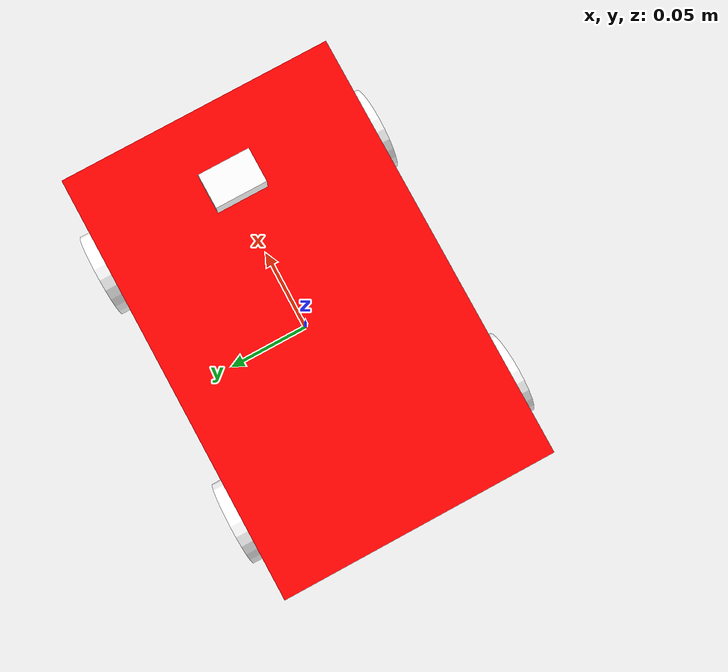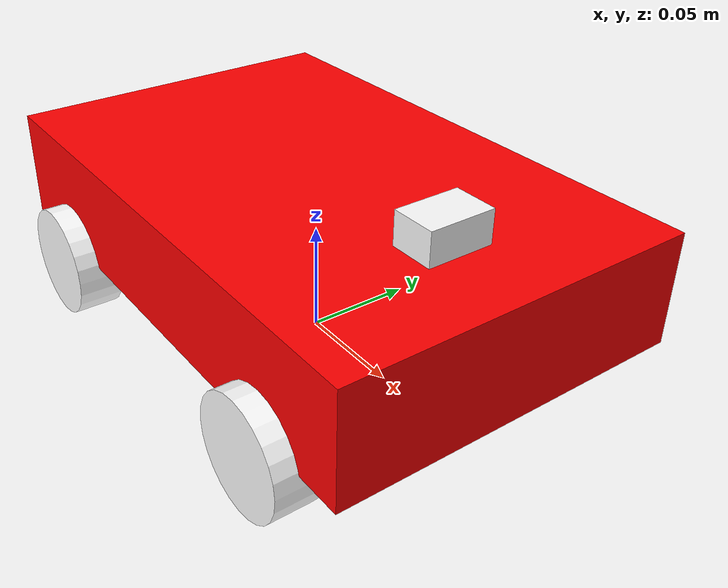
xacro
<?xml version="1.0"?>
<robot name="smartcar"
xmlns:xi="http://www.w3.org/2001/XInclude"
xmlns:gazebo="http://playerstage.sourceforge.net/gazebo/xmlschema/#gz"
xmlns:model="http://playerstage.sourceforge.net/gazebo/xmlschema/#model"
xmlns:sensor="http://playerstage.sourceforge.net/gazebo/xmlschema/#sensor"
xmlns:body="http://playerstage.sourceforge.net/gazebo/xmlschema/#body"
xmlns:geom="http://playerstage.sourceforge.net/gazebo/xmlschema/#geom"
xmlns:joint="http://playerstage.sourceforge.net/gazebo/xmlschema/#joint"
xmlns:controller="http://playerstage.sourceforge.net/gazebo/xmlschema/#controller"
xmlns:interface="http://playerstage.sourceforge.net/gazebo/xmlschema/#interface"
xmlns:rendering="http://playerstage.sourceforge.net/gazebo/xmlschema/#rendering"
xmlns:renderable="http://playerstage.sourceforge.net/gazebo/xmlschema/#renderable"
xmlns:physics="http://playerstage.sourceforge.net/gazebo/xmlschema/#physics"
xmlns:xacro="http://ros.org/wiki/xacro">

<xacro:include filename="$(find myrobot_nav2)/urdf/smartcar_body.urdf.xacro" />

<smartcar_body/>

</robot>

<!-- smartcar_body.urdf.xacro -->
<robot name="smartcar" xmlns:xacro="http://ros.org/wiki/xacro">

  <xacro:macro name="smartcar_body">
    <link name="base_link">
    <inertial>
      <origin xyz="0 0 0.055"/>
      <mass value="1.0" />
      <inertia ixx="1.0" ixy="0.0" ixz="0.0" iyy="1.0" iyz="0.0" izz="1.0"/>
    </inertial>
    <visual>
      <geometry>
        <box size="0.25 .16 .05"/>
      </geometry>
      <origin rpy="0 0 0" xyz="0 0 0.055"/>
      <material name="red">
      <color rgba="1 0 0 1"/>
      </material>
   </visual>
   <collision>
      <origin rpy="0 0 0" xyz="0 0 0.055"/>
      <geometry>
        <box size="0.25 .16 .05" />
      </geometry>
    </collision>
  </link>

 <link name="left_front_wheel">
    <inertial>
      <origin  xyz="0.08 0.08 0.025"/>
      <mass value="0.1" />
       <inertia ixx="1.0" ixy="0.0" ixz="0.0" iyy="1.0" iyz="0.0" izz="1.0"/>
    </inertial>

    <visual>
      <geometry>
        <cylinder length=".02" radius="0.025"/>
      </geometry>
      <material name="white">
        <color rgba="1 1 1 1"/>
      </material>
    </visual>
    <collision>
      <origin rpy="0 1.57075 1.57075" xyz="0.08 0.08 0.025"/>
      <geometry>
         <cylinder length=".02" radius="0.025"/>
      </geometry>
    </collision>
  </link>

  <joint name="left_front_wheel_joint" type="continuous">
    <axis xyz="0 0 1"/>
    <parent link="base_link"/>
    <child link="left_front_wheel"/>
    <origin rpy="0 1.57075 1.57075" xyz="0.08 0.08 0.025"/>
    <limit effort="100" velocity="100"/>
    <joint_properties damping="0.0" friction="0.0"/>
  </joint>

  <link name="right_front_wheel">

    <inertial>

      <origin xyz="0.08 -0.08 0.025"/>

      <mass value="0.1" />

       <inertia ixx="1.0" ixy="0.0" ixz="0.0" iyy="1.0" iyz="0.0" izz="1.0"/>

    </inertial>

    <visual>

      <geometry>

        <cylinder length=".02" radius="0.025"/>

      </geometry>

      <material name="white">

        <color rgba="1 1 1 1"/>

      </material>

    </visual>

    <collision>

      <origin rpy="0 1.57075 1.57075" xyz="0.08 -0.08 0.025"/>

      <geometry>

         <cylinder length=".02" radius="0.025"/>

      </geometry>

    </collision>

  </link>

  <joint name="right_front_wheel_joint" type="continuous">

    <axis xyz="0 0 1"/>

    <parent link="base_link"/>

    <child link="right_front_wheel"/>

    <origin rpy="0 1.57075 1.57075" xyz="0.08 -0.08 0.025"/>

    <limit effort="100" velocity="100"/>

    <joint_properties damping="0.0" friction="0.0"/>

 </joint>

 <link name="left_back_wheel">

    <inertial>

      <origin xyz="-0.08 0.08 0.025"/>

      <mass value="0.1" />

       <inertia ixx="1.0" ixy="0.0" ixz="0.0" iyy="1.0" iyz="0.0" izz="1.0"/>

    </inertial>

    <visual>

      <geometry>

        <cylinder length=".02" radius="0.025"/>

      </geometry>

      <material name="white">

        <color rgba="1 1 1 1"/>

      </material>

   </visual>

   <collision>

       <origin rpy="0 1.57075 1.57075" xyz="-0.08 0.08 0.025"/>

      <geometry>

         <cylinder length=".02" radius="0.025"/>

      </geometry>

    </collision>

  </link>

  <joint name="left_back_wheel_joint" type="continuous">

    <axis xyz="0 0 1"/>

    <parent link="base_link"/>

    <child link="left_back_wheel"/>

    <origin rpy="0 1.57075 1.57075" xyz="-0.08 0.08 0.025"/>

    <limit effort="100" velocity="100"/>

    <joint_properties damping="0.0" friction="0.0"/>

  </joint>

  <link name="right_back_wheel">

    <inertial>

       <origin xyz="-0.08 -0.08 0.025"/>

       <mass value="0.1" />

       <inertia ixx="1.0" ixy="0.0" ixz="0.0" iyy="1.0" iyz="0.0" izz="1.0"/>

    </inertial>

    <visual>

      <geometry>

        <cylinder length=".02" radius="0.025"/>

      </geometry>

      <material name="white">

        <color rgba="1 1 1 1"/>

      </material>

   </visual>

   <collision>

      <origin rpy="0 1.57075 1.57075" xyz="-0.08 -0.08 0.025"/>

      <geometry>

         <cylinder length=".02" radius="0.025"/>

      </geometry>

    </collision>

  </link>

  <joint name="right_back_wheel_joint" type="continuous">

    <axis xyz="0 0 1"/>

    <parent link="base_link"/>

    <child link="right_back_wheel"/>

    <origin rpy="0 1.57075 1.57075" xyz="-0.08 -0.08 0.025"/>

    <limit effort="100" velocity="100"/>

    <joint_properties damping="0.0" friction="0.0"/>

  </joint>

  <link name="camera_link">

    <inertial>

      <origin xyz="0.08 0 0.08"/>

      <mass value="0.1" />

      <inertia ixx="1.0" ixy="0.0" ixz="0.0" iyy="1.0" iyz="0.0" izz="1.0"/>

    </inertial>

    <visual>

      <geometry>

        <box size=".02 .03 .03"/>

      </geometry>

      <material name="white">

        <color rgba="1 1 1 1"/>

      </material>

     </visual>

     <collision>

      <origin xyz="0.08 0 0.08"/>

      <geometry>

         <cylinder length=".02" radius="0.025"/>

      </geometry>

    </collision>

  </link>

  <joint name="camera_joint" type="fixed">

    <parent link="base_link"/>

    <child link="camera_link"/>

    <origin xyz="0.08 0 0.08"/>

  </joint>

        <gazebo reference="camera_link">
            <material>Gazebo/Black</material>
        </gazebo>

        <gazebo reference="camera_link">
            <sensor type="camera" name="camera_node">
                <update_rate>30.0</update_rate>
                <camera name="head">
                    <horizontal_fov>1.3962634</horizontal_fov>
                    <image>
                        <width>1280</width>
                        <height>720</height>
                        <format>R8G8B8</format>
                    </image>
                    <clip>
                        <near>0.02</near>
                        <far>300</far>
                    </clip>
                    <noise>
                        <type>gaussian</type>
                        <mean>0.0</mean>
                        <stddev>0.007</stddev>
                    </noise>
                </camera>
                <plugin name="gazebo_camera" filename="libgazebo_ros_camera.so">
                    <alwaysOn>true</alwaysOn>
                    <updateRate>0.0</updateRate>
                    <cameraName>/camera</cameraName>
                    <imageTopicName>image_raw</imageTopicName>
                    <cameraInfoTopicName>camera_info</cameraInfoTopicName>
                    <frameName>camera_link</frameName>
                    <hackBaseline>0.07</hackBaseline>
                    <distortionK1>0.0</distortionK1>
                    <distortionK2>0.0</distortionK2>
                    <distortionK3>0.0</distortionK3>
                    <distortionT1>0.0</distortionT1>
                    <distortionT2>0.0</distortionT2>
                </plugin>
            </sensor>
        </gazebo>

<gazebo reference="base_link">
    <material>Gazebo/Blue</material>
    <turnGravityOff>false</turnGravityOff>
</gazebo>

<gazebo reference="right_front_wheel">
    <material>Gazebo/FlatBlack</material>
</gazebo>

<gazebo reference="right_back_wheel">
    <material>Gazebo/FlatBlack</material>
</gazebo>

<gazebo reference="left_front_wheel">
    <material>Gazebo/FlatBlack</material>
</gazebo>

<gazebo reference="left_back_wheel">
    <material>Gazebo/FlatBlack</material>
</gazebo>

<gazebo reference="camera_link">
    <material>Gazebo/White</material>
</gazebo>

</xacro:macro>

</robot>
